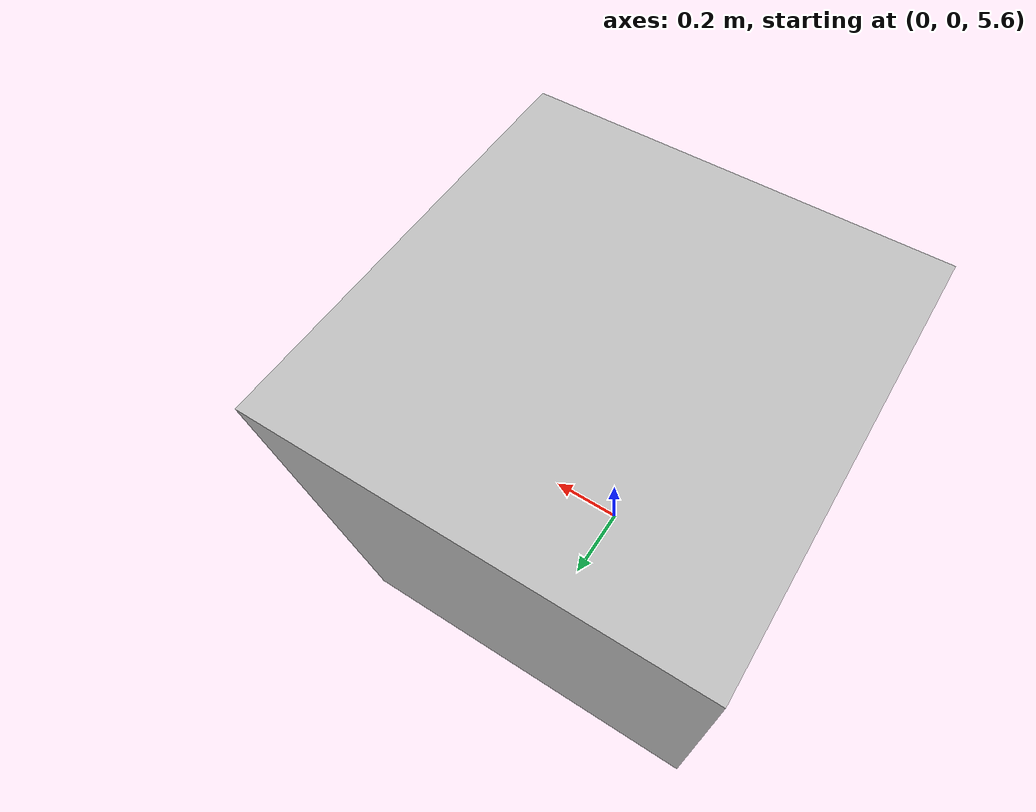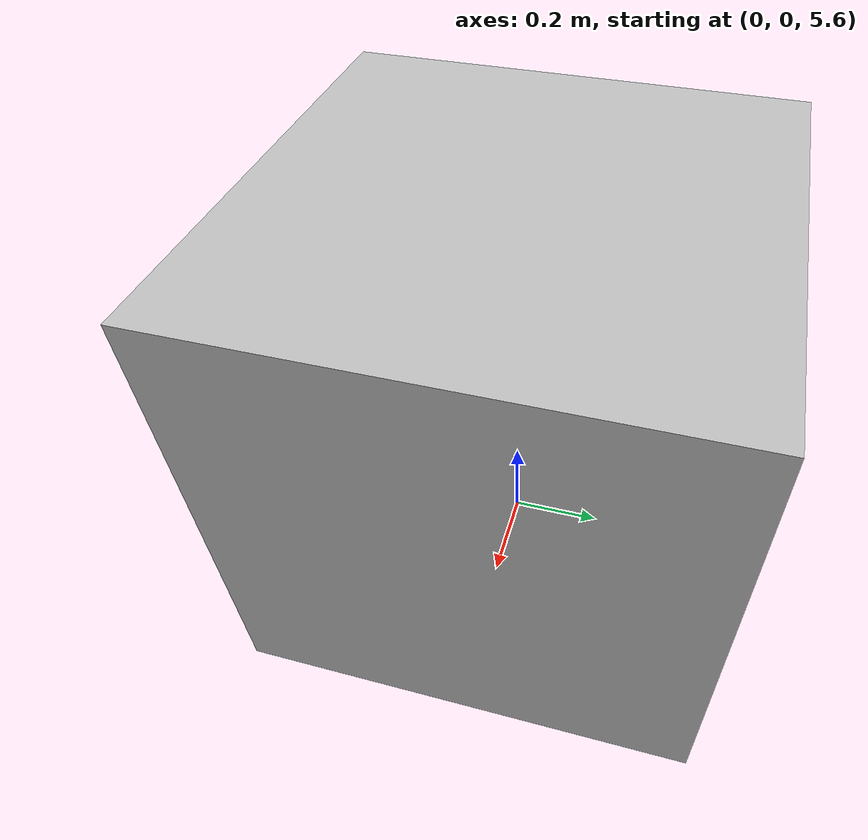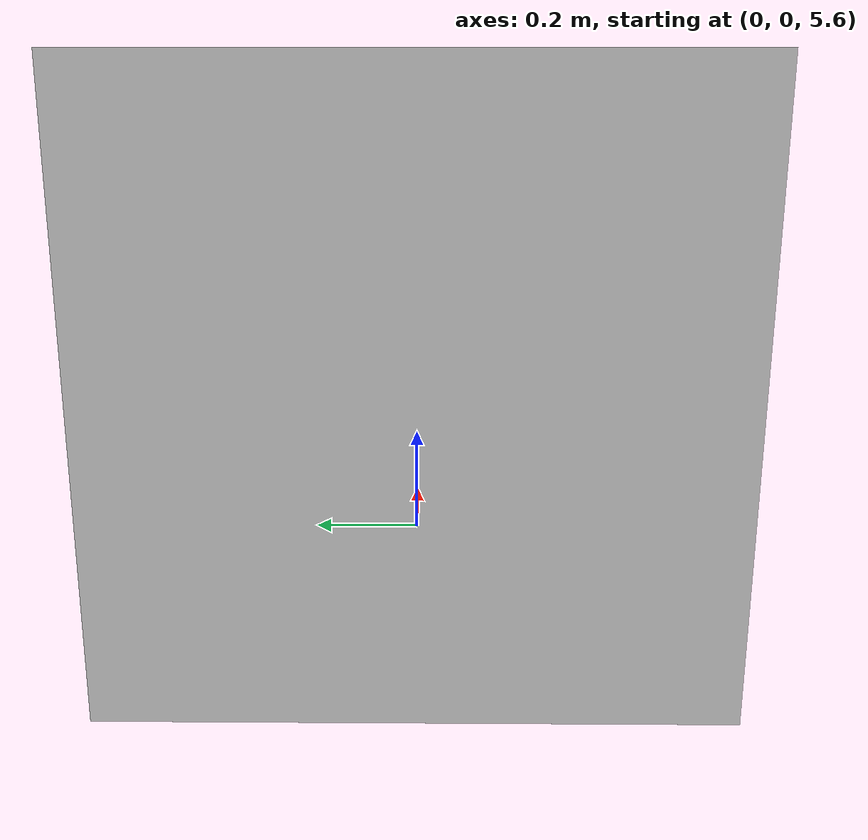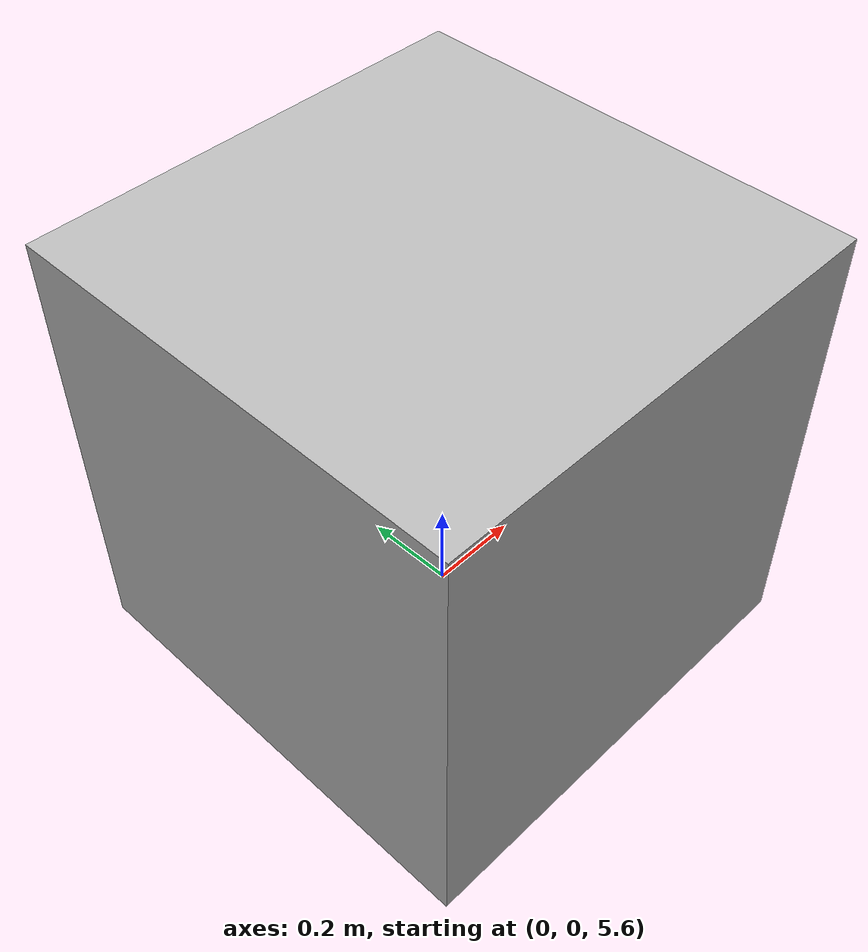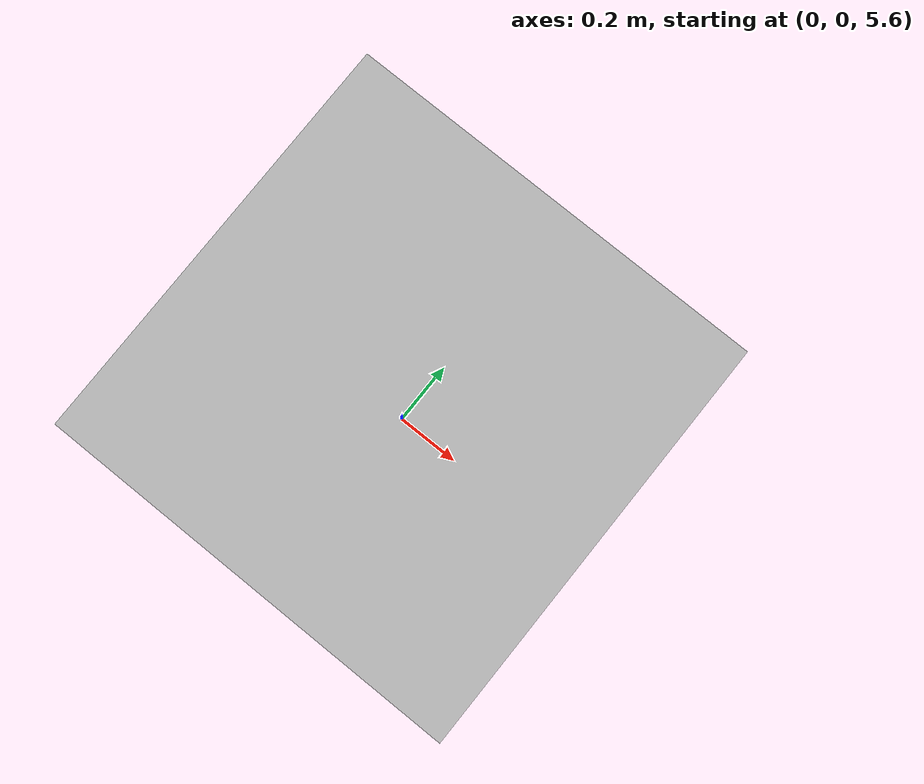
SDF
<?xml version="1.0" ?>
<sdf version="1.5">
  <world name="default">
    <physics type='ode'>
      <max_step_size>0.004</max_step_size>
      <real_time_factor>1</real_time_factor>
      <real_time_update_rate>250</real_time_update_rate>
    </physics>

    <!-- A global light source -->
    <include>
      <uri>model://sun</uri>
    </include>

    <include>
      <uri>model://ground_plane</uri>
    </include>

    <model name="cube">
      <pose>0.0 0.0 6.0 0.0 0.0 0.0</pose>
      <link name="box">
        <pose>0.0 0.0 0.0 0.0 0.0 0.0</pose>
        <visual name="box_visual">
          <geometry>
            <box>
              <size>1 1 1</size>
            </box>
          </geometry>
        </visual>

        <collision name="box_collision">
          <geometry>
            <box>
              <size>1 1 1</size>
            </box>
          </geometry>
        </collision>
      </link>
    </model>

    <plugin name="usv_gazebo_wind_plugin" filename="libusv_gazebo_wind_plugin.so">
        <wind_obj>
          <name>cube</name>
          <link_name>box</link_name>
          <coeff_vector>0.1 0.1 0.1</coeff_vector>
        </wind_obj>
        <wind_direction>240</wind_direction>
        <wind_mean_velocity>5.0</wind_mean_velocity>
        <var_wind_gain_constants>2.0</var_wind_gain_constants>
        <var_wind_time_constants>2.0</var_wind_time_constants>
        <update_rate>10.0</update_rate>
        <topic_wind_speed>/wind_speed</topic_wind_speed>
        <topic_wind_direction>/wind_direction</topic_wind_direction>
        <random_seed>2482</random_seed>
    </plugin>

  </world>
</sdf>
